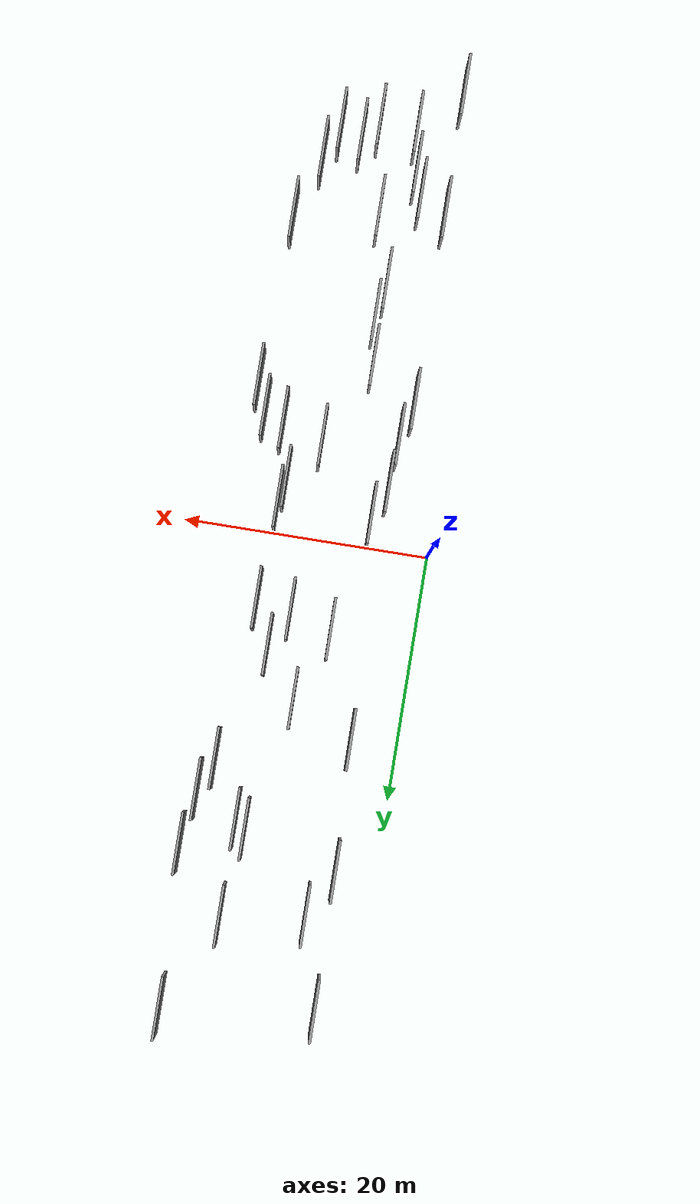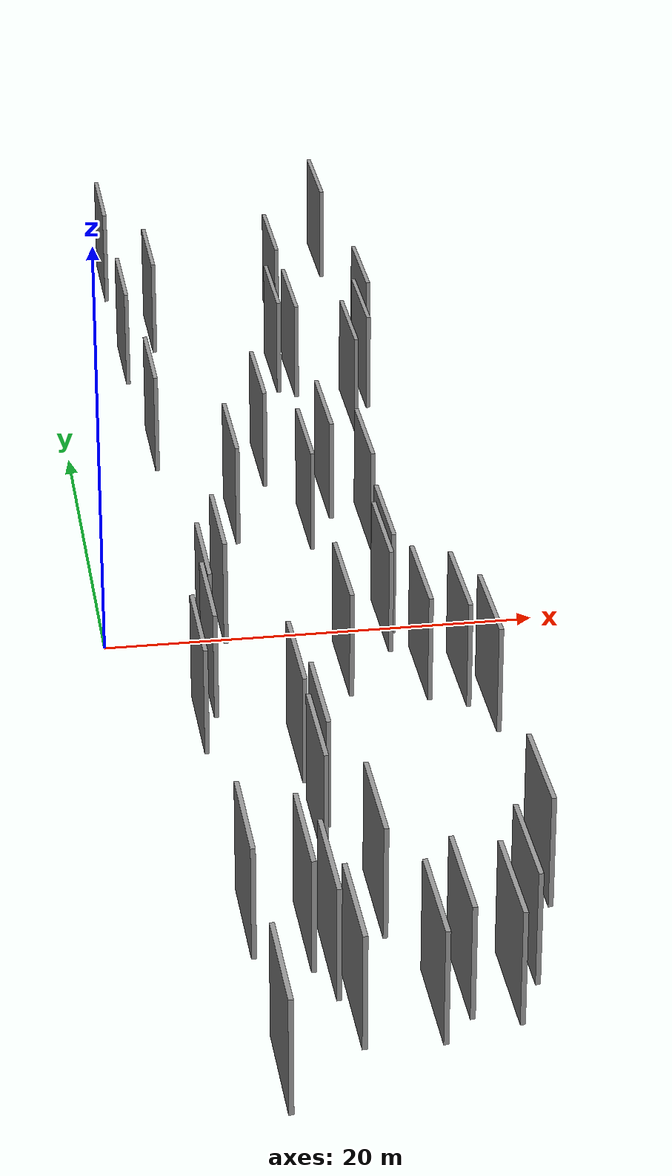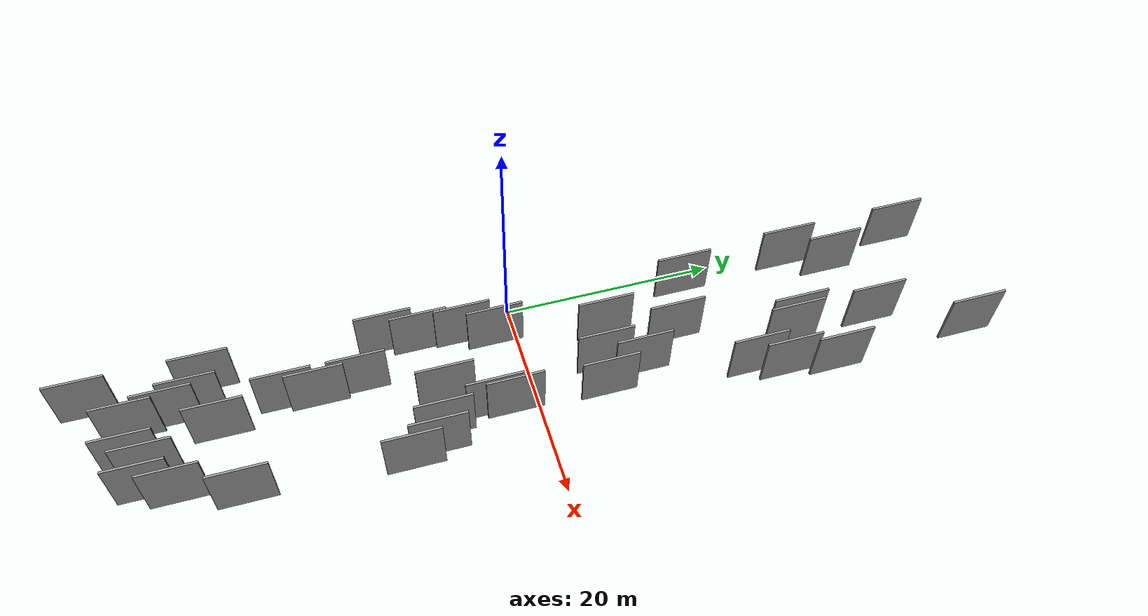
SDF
<sdf version="1.6">
 <world name="default">
  <scene>
   <sky><clouds><speed>12</speed></clouds></sky>
   <ambient>0.4 0.4 0.4 1</ambient>
   <background>0.7 0.7 0.7 1</background>
   <shadows>1</shadows>
  </scene>
  <gravity>0 0 -9.8066</gravity>
  <magnetic_field>6e-06 2.3e-05 -4.2e-05</magnetic_field>
  <physics default="0" name="default_physics" type="ode">
   <ode>
    <solver>
     <type>quick</type>
     <iters>10</iters>
     <sor>1.0</sor>
     <use_dynamic_moi_rescaling>0</use_dynamic_moi_rescaling>
    </solver>
    <constraints>
     <cfm>0</cfm>
     <erp>0.2</erp>
     <contact_max_correcting_vel>100</contact_max_correcting_vel>
     <contact_surface_layer>0.001</contact_surface_layer>
    </constraints>
   </ode>
   <max_step_size>0.004</max_step_size>
   <real_time_factor>1</real_time_factor>
   <real_time_update_rate>250</real_time_update_rate>
  </physics>
  <light name="sun" type="directional">
   <pose>0 0 10 0 0 0</pose>
   <diffuse>0.8 0.8 0.8 1</diffuse>
   <specular>0.2 0.2 0.2 1</specular>
   <attenuation>
    <range>1000</range>
    <constant>0.9</constant>
    <linear>0.01</linear>
    <quadratic>0.001</quadratic>
   </attenuation>
   <direction>-0.5 0.1 -0.9</direction>
  </light>
  <model name="grey_wall_1">
   <static>1</static>
   <pose>4.0611 -5.0417 2.5 0.000000 0.000000 1.570796</pose>
   <link name="link">
    <pose>0 0 2.50 0 0 0</pose>
    <collision name="collision"><geometry><box><size>5.00 0.2 5.00</size></box></geometry></collision>
    <visual name="visual">
     <cast_shadows>0</cast_shadows>
     <geometry><box><size>5.00 0.2 5.00</size></box></geometry>
     <material>
      <script>
       <uri>model://grey_wall/materials/scripts</uri>
       <uri>model://grey_wall/materials/textures</uri>
       <name>vrc/grey_wall</name>
      </script>
     </material>
    </visual>
   </link>
  </model>
  <model name="grey_wall_2">
   <static>1</static>
   <pose>6.8027 -21.0316 2.5 0.000000 0.000000 1.570796</pose>
   <link name="link">
    <pose>0 0 2.50 0 0 0</pose>
    <collision name="collision"><geometry><box><size>5.00 0.2 5.00</size></box></geometry></collision>
    <visual name="visual">
     <cast_shadows>0</cast_shadows>
     <geometry><box><size>5.00 0.2 5.00</size></box></geometry>
     <material>
      <script>
       <uri>model://grey_wall/materials/scripts</uri>
       <uri>model://grey_wall/materials/textures</uri>
       <name>vrc/grey_wall</name>
      </script>
     </material>
    </visual>
   </link>
  </model>
  <model name="grey_wall_3">
   <static>1</static>
   <pose>5.0517 -2.3340 2.5 0.000000 0.000000 1.570796</pose>
   <link name="link">
    <pose>0 0 2.50 0 0 0</pose>
    <collision name="collision"><geometry><box><size>5.00 0.2 5.00</size></box></geometry></collision>
    <visual name="visual">
     <cast_shadows>0</cast_shadows>
     <geometry><box><size>5.00 0.2 5.00</size></box></geometry>
     <material>
      <script>
       <uri>model://grey_wall/materials/scripts</uri>
       <uri>model://grey_wall/materials/textures</uri>
       <name>vrc/grey_wall</name>
      </script>
     </material>
    </visual>
   </link>
  </model>
  <model name="grey_wall_4">
   <static>1</static>
   <pose>13.2002 -8.6880 2.5 0.000000 0.000000 1.570796</pose>
   <link name="link">
    <pose>0 0 2.50 0 0 0</pose>
    <collision name="collision"><geometry><box><size>5.00 0.2 5.00</size></box></geometry></collision>
    <visual name="visual">
     <cast_shadows>0</cast_shadows>
     <geometry><box><size>5.00 0.2 5.00</size></box></geometry>
     <material>
      <script>
       <uri>model://grey_wall/materials/scripts</uri>
       <uri>model://grey_wall/materials/textures</uri>
       <name>vrc/grey_wall</name>
      </script>
     </material>
    </visual>
   </link>
  </model>
  <model name="grey_wall_5">
   <static>1</static>
   <pose>5.1842 -28.6726 2.5 0.000000 0.000000 1.570796</pose>
   <link name="link">
    <pose>0 0 2.50 0 0 0</pose>
    <collision name="collision"><geometry><box><size>5.00 0.2 5.00</size></box></geometry></collision>
    <visual name="visual">
     <cast_shadows>0</cast_shadows>
     <geometry><box><size>5.00 0.2 5.00</size></box></geometry>
     <material>
      <script>
       <uri>model://grey_wall/materials/scripts</uri>
       <uri>model://grey_wall/materials/textures</uri>
       <name>vrc/grey_wall</name>
      </script>
     </material>
    </visual>
   </link>
  </model>
  <model name="grey_wall_6">
   <static>1</static>
   <pose>15.6632 -11.8066 2.5 0.000000 0.000000 1.570796</pose>
   <link name="link">
    <pose>0 0 2.50 0 0 0</pose>
    <collision name="collision"><geometry><box><size>5.00 0.2 5.00</size></box></geometry></collision>
    <visual name="visual">
     <cast_shadows>0</cast_shadows>
     <geometry><box><size>5.00 0.2 5.00</size></box></geometry>
     <material>
      <script>
       <uri>model://grey_wall/materials/scripts</uri>
       <uri>model://grey_wall/materials/textures</uri>
       <name>vrc/grey_wall</name>
      </script>
     </material>
    </visual>
   </link>
  </model>
  <model name="grey_wall_7">
   <static>1</static>
   <pose>5.2325 29.7502 2.5 0.000000 0.000000 1.570796</pose>
   <link name="link">
    <pose>0 0 2.50 0 0 0</pose>
    <collision name="collision"><geometry><box><size>5.00 0.2 5.00</size></box></geometry></collision>
    <visual name="visual">
     <cast_shadows>0</cast_shadows>
     <geometry><box><size>5.00 0.2 5.00</size></box></geometry>
     <material>
      <script>
       <uri>model://grey_wall/materials/scripts</uri>
       <uri>model://grey_wall/materials/textures</uri>
       <name>vrc/grey_wall</name>
      </script>
     </material>
    </visual>
   </link>
  </model>
  <model name="grey_wall_8">
   <static>1</static>
   <pose>14.2520 18.7324 2.5 0.000000 0.000000 1.570796</pose>
   <link name="link">
    <pose>0 0 2.50 0 0 0</pose>
    <collision name="collision"><geometry><box><size>5.00 0.2 5.00</size></box></geometry></collision>
    <visual name="visual">
     <cast_shadows>0</cast_shadows>
     <geometry><box><size>5.00 0.2 5.00</size></box></geometry>
     <material>
      <script>
       <uri>model://grey_wall/materials/scripts</uri>
       <uri>model://grey_wall/materials/textures</uri>
       <name>vrc/grey_wall</name>
      </script>
     </material>
    </visual>
   </link>
  </model>
  <model name="grey_wall_9">
   <static>1</static>
   <pose>9.8904 -7.8526 2.5 0.000000 0.000000 1.570796</pose>
   <link name="link">
    <pose>0 0 2.50 0 0 0</pose>
    <collision name="collision"><geometry><box><size>5.00 0.2 5.00</size></box></geometry></collision>
    <visual name="visual">
     <cast_shadows>0</cast_shadows>
     <geometry><box><size>5.00 0.2 5.00</size></box></geometry>
     <material>
      <script>
       <uri>model://grey_wall/materials/scripts</uri>
       <uri>model://grey_wall/materials/textures</uri>
       <name>vrc/grey_wall</name>
      </script>
     </material>
    </visual>
   </link>
  </model>
  <model name="grey_wall_10">
   <static>1</static>
   <pose>15.0764 -25.5331 2.5 0.000000 0.000000 1.570796</pose>
   <link name="link">
    <pose>0 0 2.50 0 0 0</pose>
    <collision name="collision"><geometry><box><size>5.00 0.2 5.00</size></box></geometry></collision>
    <visual name="visual">
     <cast_shadows>0</cast_shadows>
     <geometry><box><size>5.00 0.2 5.00</size></box></geometry>
     <material>
      <script>
       <uri>model://grey_wall/materials/scripts</uri>
       <uri>model://grey_wall/materials/textures</uri>
       <name>vrc/grey_wall</name>
      </script>
     </material>
    </visual>
   </link>
  </model>
  <model name="grey_wall_11">
   <static>1</static>
   <pose>15.9579 25.7629 2.5 0.000000 0.000000 1.570796</pose>
   <link name="link">
    <pose>0 0 2.50 0 0 0</pose>
    <collision name="collision"><geometry><box><size>5.00 0.2 5.00</size></box></geometry></collision>
    <visual name="visual">
     <cast_shadows>0</cast_shadows>
     <geometry><box><size>5.00 0.2 5.00</size></box></geometry>
     <material>
      <script>
       <uri>model://grey_wall/materials/scripts</uri>
       <uri>model://grey_wall/materials/textures</uri>
       <name>vrc/grey_wall</name>
      </script>
     </material>
    </visual>
   </link>
  </model>
  <model name="grey_wall_12">
   <static>1</static>
   <pose>12.6121 -2.4671 2.5 0.000000 0.000000 1.570796</pose>
   <link name="link">
    <pose>0 0 2.50 0 0 0</pose>
    <collision name="collision"><geometry><box><size>5.00 0.2 5.00</size></box></geometry></collision>
    <visual name="visual">
     <cast_shadows>0</cast_shadows>
     <geometry><box><size>5.00 0.2 5.00</size></box></geometry>
     <material>
      <script>
       <uri>model://grey_wall/materials/scripts</uri>
       <uri>model://grey_wall/materials/textures</uri>
       <name>vrc/grey_wall</name>
      </script>
     </material>
    </visual>
   </link>
  </model>
  <model name="grey_wall_13">
   <static>1</static>
   <pose>15.4311 38.5887 2.5 0.000000 0.000000 1.570796</pose>
   <link name="link">
    <pose>0 0 2.50 0 0 0</pose>
    <collision name="collision"><geometry><box><size>5.00 0.2 5.00</size></box></geometry></collision>
    <visual name="visual">
     <cast_shadows>0</cast_shadows>
     <geometry><box><size>5.00 0.2 5.00</size></box></geometry>
     <material>
      <script>
       <uri>model://grey_wall/materials/scripts</uri>
       <uri>model://grey_wall/materials/textures</uri>
       <name>vrc/grey_wall</name>
      </script>
     </material>
    </visual>
   </link>
  </model>
  <model name="grey_wall_14">
   <static>1</static>
   <pose>3.4527 25.9818 2.5 0.000000 0.000000 1.570796</pose>
   <link name="link">
    <pose>0 0 2.50 0 0 0</pose>
    <collision name="collision"><geometry><box><size>5.00 0.2 5.00</size></box></geometry></collision>
    <visual name="visual">
     <cast_shadows>0</cast_shadows>
     <geometry><box><size>5.00 0.2 5.00</size></box></geometry>
     <material>
      <script>
       <uri>model://grey_wall/materials/scripts</uri>
       <uri>model://grey_wall/materials/textures</uri>
       <name>vrc/grey_wall</name>
      </script>
     </material>
    </visual>
   </link>
  </model>
  <model name="grey_wall_15">
   <static>1</static>
   <pose>12.2305 -4.1377 2.5 0.000000 0.000000 1.570796</pose>
   <link name="link">
    <pose>0 0 2.50 0 0 0</pose>
    <collision name="collision"><geometry><box><size>5.00 0.2 5.00</size></box></geometry></collision>
    <visual name="visual">
     <cast_shadows>0</cast_shadows>
     <geometry><box><size>5.00 0.2 5.00</size></box></geometry>
     <material>
      <script>
       <uri>model://grey_wall/materials/scripts</uri>
       <uri>model://grey_wall/materials/textures</uri>
       <name>vrc/grey_wall</name>
      </script>
     </material>
    </visual>
   </link>
  </model>
  <model name="grey_wall_16">
   <static>1</static>
   <pose>11.0321 23.8333 2.5 0.000000 0.000000 1.570796</pose>
   <link name="link">
    <pose>0 0 2.50 0 0 0</pose>
    <collision name="collision"><geometry><box><size>5.00 0.2 5.00</size></box></geometry></collision>
    <visual name="visual">
     <cast_shadows>0</cast_shadows>
     <geometry><box><size>5.00 0.2 5.00</size></box></geometry>
     <material>
      <script>
       <uri>model://grey_wall/materials/scripts</uri>
       <uri>model://grey_wall/materials/textures</uri>
       <name>vrc/grey_wall</name>
      </script>
     </material>
    </visual>
   </link>
  </model>
  <model name="grey_wall_17">
   <static>1</static>
   <pose>11.8586 23.1763 2.5 0.000000 0.000000 1.570796</pose>
   <link name="link">
    <pose>0 0 2.50 0 0 0</pose>
    <collision name="collision"><geometry><box><size>5.00 0.2 5.00</size></box></geometry></collision>
    <visual name="visual">
     <cast_shadows>0</cast_shadows>
     <geometry><box><size>5.00 0.2 5.00</size></box></geometry>
     <material>
      <script>
       <uri>model://grey_wall/materials/scripts</uri>
       <uri>model://grey_wall/materials/textures</uri>
       <name>vrc/grey_wall</name>
      </script>
     </material>
    </visual>
   </link>
  </model>
  <model name="grey_wall_18">
   <static>1</static>
   <pose>3.8338 -8.8476 2.5 0.000000 0.000000 1.570796</pose>
   <link name="link">
    <pose>0 0 2.50 0 0 0</pose>
    <collision name="collision"><geometry><box><size>5.00 0.2 5.00</size></box></geometry></collision>
    <visual name="visual">
     <cast_shadows>0</cast_shadows>
     <geometry><box><size>5.00 0.2 5.00</size></box></geometry>
     <material>
      <script>
       <uri>model://grey_wall/materials/scripts</uri>
       <uri>model://grey_wall/materials/textures</uri>
       <name>vrc/grey_wall</name>
      </script>
     </material>
    </visual>
   </link>
  </model>
  <model name="grey_wall_19">
   <static>1</static>
   <pose>8.8833 13.1258 2.5 0.000000 0.000000 1.570796</pose>
   <link name="link">
    <pose>0 0 2.50 0 0 0</pose>
    <collision name="collision"><geometry><box><size>5.00 0.2 5.00</size></box></geometry></collision>
    <visual name="visual">
     <cast_shadows>0</cast_shadows>
     <geometry><box><size>5.00 0.2 5.00</size></box></geometry>
     <material>
      <script>
       <uri>model://grey_wall/materials/scripts</uri>
       <uri>model://grey_wall/materials/textures</uri>
       <name>vrc/grey_wall</name>
      </script>
     </material>
    </visual>
   </link>
  </model>
  <model name="grey_wall_20">
   <static>1</static>
   <pose>11.8826 30.8243 2.5 0.000000 0.000000 1.570796</pose>
   <link name="link">
    <pose>0 0 2.50 0 0 0</pose>
    <collision name="collision"><geometry><box><size>5.00 0.2 5.00</size></box></geometry></collision>
    <visual name="visual">
     <cast_shadows>0</cast_shadows>
     <geometry><box><size>5.00 0.2 5.00</size></box></geometry>
     <material>
      <script>
       <uri>model://grey_wall/materials/scripts</uri>
       <uri>model://grey_wall/materials/textures</uri>
       <name>vrc/grey_wall</name>
      </script>
     </material>
    </visual>
   </link>
  </model>
  <model name="grey_wall_21">
   <static>1</static>
   <pose>11.5611 9.2279 2.5 0.000000 0.000000 1.570796</pose>
   <link name="link">
    <pose>0 0 2.50 0 0 0</pose>
    <collision name="collision"><geometry><box><size>5.00 0.2 5.00</size></box></geometry></collision>
    <visual name="visual">
     <cast_shadows>0</cast_shadows>
     <geometry><box><size>5.00 0.2 5.00</size></box></geometry>
     <material>
      <script>
       <uri>model://grey_wall/materials/scripts</uri>
       <uri>model://grey_wall/materials/textures</uri>
       <name>vrc/grey_wall</name>
      </script>
     </material>
    </visual>
   </link>
  </model>
  <model name="grey_wall_22">
   <static>1</static>
   <pose>15.2803 21.3491 2.5 0.000000 0.000000 1.570796</pose>
   <link name="link">
    <pose>0 0 2.50 0 0 0</pose>
    <collision name="collision"><geometry><box><size>5.00 0.2 5.00</size></box></geometry></collision>
    <visual name="visual">
     <cast_shadows>0</cast_shadows>
     <geometry><box><size>5.00 0.2 5.00</size></box></geometry>
     <material>
      <script>
       <uri>model://grey_wall/materials/scripts</uri>
       <uri>model://grey_wall/materials/textures</uri>
       <name>vrc/grey_wall</name>
      </script>
     </material>
    </visual>
   </link>
  </model>
  <model name="grey_wall_23">
   <static>1</static>
   <pose>13.5013 -30.7502 2.5 0.000000 0.000000 1.570796</pose>
   <link name="link">
    <pose>0 0 2.50 0 0 0</pose>
    <collision name="collision"><geometry><box><size>5.00 0.2 5.00</size></box></geometry></collision>
    <visual name="visual">
     <cast_shadows>0</cast_shadows>
     <geometry><box><size>5.00 0.2 5.00</size></box></geometry>
     <material>
      <script>
       <uri>model://grey_wall/materials/scripts</uri>
       <uri>model://grey_wall/materials/textures</uri>
       <name>vrc/grey_wall</name>
      </script>
     </material>
    </visual>
   </link>
  </model>
  <model name="grey_wall_24">
   <static>1</static>
   <pose>5.8573 -30.6992 2.5 0.000000 0.000000 1.570796</pose>
   <link name="link">
    <pose>0 0 2.50 0 0 0</pose>
    <collision name="collision"><geometry><box><size>5.00 0.2 5.00</size></box></geometry></collision>
    <visual name="visual">
     <cast_shadows>0</cast_shadows>
     <geometry><box><size>5.00 0.2 5.00</size></box></geometry>
     <material>
      <script>
       <uri>model://grey_wall/materials/scripts</uri>
       <uri>model://grey_wall/materials/textures</uri>
       <name>vrc/grey_wall</name>
      </script>
     </material>
    </visual>
   </link>
  </model>
  <model name="grey_wall_25">
   <static>1</static>
   <pose>14.7804 -9.4741 2.5 0.000000 0.000000 1.570796</pose>
   <link name="link">
    <pose>0 0 2.50 0 0 0</pose>
    <collision name="collision"><geometry><box><size>5.00 0.2 5.00</size></box></geometry></collision>
    <visual name="visual">
     <cast_shadows>0</cast_shadows>
     <geometry><box><size>5.00 0.2 5.00</size></box></geometry>
     <material>
      <script>
       <uri>model://grey_wall/materials/scripts</uri>
       <uri>model://grey_wall/materials/textures</uri>
       <name>vrc/grey_wall</name>
      </script>
     </material>
    </visual>
   </link>
  </model>
  <model name="grey_wall_26">
   <static>1</static>
   <pose>9.3566 -34.0890 2.5 0.000000 0.000000 1.570796</pose>
   <link name="link">
    <pose>0 0 2.50 0 0 0</pose>
    <collision name="collision"><geometry><box><size>5.00 0.2 5.00</size></box></geometry></collision>
    <visual name="visual">
     <cast_shadows>0</cast_shadows>
     <geometry><box><size>5.00 0.2 5.00</size></box></geometry>
     <material>
      <script>
       <uri>model://grey_wall/materials/scripts</uri>
       <uri>model://grey_wall/materials/textures</uri>
       <name>vrc/grey_wall</name>
      </script>
     </material>
    </visual>
   </link>
  </model>
  <model name="grey_wall_27">
   <static>1</static>
   <pose>3.3523 36.8892 2.5 0.000000 0.000000 1.570796</pose>
   <link name="link">
    <pose>0 0 2.50 0 0 0</pose>
    <collision name="collision"><geometry><box><size>5.00 0.2 5.00</size></box></geometry></collision>
    <visual name="visual">
     <cast_shadows>0</cast_shadows>
     <geometry><box><size>5.00 0.2 5.00</size></box></geometry>
     <material>
      <script>
       <uri>model://grey_wall/materials/scripts</uri>
       <uri>model://grey_wall/materials/textures</uri>
       <name>vrc/grey_wall</name>
      </script>
     </material>
    </visual>
   </link>
  </model>
  <model name="grey_wall_28">
   <static>1</static>
   <pose>6.3147 -33.9557 2.5 0.000000 0.000000 1.570796</pose>
   <link name="link">
    <pose>0 0 2.50 0 0 0</pose>
    <collision name="collision"><geometry><box><size>5.00 0.2 5.00</size></box></geometry></collision>
    <visual name="visual">
     <cast_shadows>0</cast_shadows>
     <geometry><box><size>5.00 0.2 5.00</size></box></geometry>
     <material>
      <script>
       <uri>model://grey_wall/materials/scripts</uri>
       <uri>model://grey_wall/materials/textures</uri>
       <name>vrc/grey_wall</name>
      </script>
     </material>
    </visual>
   </link>
  </model>
  <model name="grey_wall_29">
   <static>1</static>
   <pose>12.4158 -33.2538 2.5 0.000000 0.000000 1.570796</pose>
   <link name="link">
    <pose>0 0 2.50 0 0 0</pose>
    <collision name="collision"><geometry><box><size>5.00 0.2 5.00</size></box></geometry></collision>
    <visual name="visual">
     <cast_shadows>0</cast_shadows>
     <geometry><box><size>5.00 0.2 5.00</size></box></geometry>
     <material>
      <script>
       <uri>model://grey_wall/materials/scripts</uri>
       <uri>model://grey_wall/materials/textures</uri>
       <name>vrc/grey_wall</name>
      </script>
     </material>
    </visual>
   </link>
  </model>
  <model name="grey_wall_30">
   <static>1</static>
   <pose>3.8703 15.6135 2.5 0.000000 0.000000 1.570796</pose>
   <link name="link">
    <pose>0 0 2.50 0 0 0</pose>
    <collision name="collision"><geometry><box><size>5.00 0.2 5.00</size></box></geometry></collision>
    <visual name="visual">
     <cast_shadows>0</cast_shadows>
     <geometry><box><size>5.00 0.2 5.00</size></box></geometry>
     <material>
      <script>
       <uri>model://grey_wall/materials/scripts</uri>
       <uri>model://grey_wall/materials/textures</uri>
       <name>vrc/grey_wall</name>
      </script>
     </material>
    </visual>
   </link>
  </model>
  <model name="grey_wall_31">
   <static>1</static>
   <pose>3.0288 -27.4514 2.5 0.000000 0.000000 1.570796</pose>
   <link name="link">
    <pose>0 0 2.50 0 0 0</pose>
    <collision name="collision"><geometry><box><size>5.00 0.2 5.00</size></box></geometry></collision>
    <visual name="visual">
     <cast_shadows>0</cast_shadows>
     <geometry><box><size>5.00 0.2 5.00</size></box></geometry>
     <material>
      <script>
       <uri>model://grey_wall/materials/scripts</uri>
       <uri>model://grey_wall/materials/textures</uri>
       <name>vrc/grey_wall</name>
      </script>
     </material>
    </visual>
   </link>
  </model>
  <model name="grey_wall_32">
   <static>1</static>
   <pose>6.8437 -14.7817 2.5 0.000000 0.000000 1.570796</pose>
   <link name="link">
    <pose>0 0 2.50 0 0 0</pose>
    <collision name="collision"><geometry><box><size>5.00 0.2 5.00</size></box></geometry></collision>
    <visual name="visual">
     <cast_shadows>0</cast_shadows>
     <geometry><box><size>5.00 0.2 5.00</size></box></geometry>
     <material>
      <script>
       <uri>model://grey_wall/materials/scripts</uri>
       <uri>model://grey_wall/materials/textures</uri>
       <name>vrc/grey_wall</name>
      </script>
     </material>
    </visual>
   </link>
  </model>
  <model name="grey_wall_33">
   <static>1</static>
   <pose>12.9965 5.7429 2.5 0.000000 0.000000 1.570796</pose>
   <link name="link">
    <pose>0 0 2.50 0 0 0</pose>
    <collision name="collision"><geometry><box><size>5.00 0.2 5.00</size></box></geometry></collision>
    <visual name="visual">
     <cast_shadows>0</cast_shadows>
     <geometry><box><size>5.00 0.2 5.00</size></box></geometry>
     <material>
      <script>
       <uri>model://grey_wall/materials/scripts</uri>
       <uri>model://grey_wall/materials/textures</uri>
       <name>vrc/grey_wall</name>
      </script>
     </material>
    </visual>
   </link>
  </model>
  <model name="grey_wall_34">
   <static>1</static>
   <pose>10.2127 6.1864 2.5 0.000000 0.000000 1.570796</pose>
   <link name="link">
    <pose>0 0 2.50 0 0 0</pose>
    <collision name="collision"><geometry><box><size>5.00 0.2 5.00</size></box></geometry></collision>
    <visual name="visual">
     <cast_shadows>0</cast_shadows>
     <geometry><box><size>5.00 0.2 5.00</size></box></geometry>
     <material>
      <script>
       <uri>model://grey_wall/materials/scripts</uri>
       <uri>model://grey_wall/materials/textures</uri>
       <name>vrc/grey_wall</name>
      </script>
     </material>
    </visual>
   </link>
  </model>
  <model name="grey_wall_35">
   <static>1</static>
   <pose>3.0692 -11.8212 2.5 0.000000 0.000000 1.570796</pose>
   <link name="link">
    <pose>0 0 2.50 0 0 0</pose>
    <collision name="collision"><geometry><box><size>5.00 0.2 5.00</size></box></geometry></collision>
    <visual name="visual">
     <cast_shadows>0</cast_shadows>
     <geometry><box><size>5.00 0.2 5.00</size></box></geometry>
     <material>
      <script>
       <uri>model://grey_wall/materials/scripts</uri>
       <uri>model://grey_wall/materials/textures</uri>
       <name>vrc/grey_wall</name>
      </script>
     </material>
    </visual>
   </link>
  </model>
  <model name="grey_wall_36">
   <static>1</static>
   <pose>10.6263 -32.6349 2.5 0.000000 0.000000 1.570796</pose>
   <link name="link">
    <pose>0 0 2.50 0 0 0</pose>
    <collision name="collision"><geometry><box><size>5.00 0.2 5.00</size></box></geometry></collision>
    <visual name="visual">
     <cast_shadows>0</cast_shadows>
     <geometry><box><size>5.00 0.2 5.00</size></box></geometry>
     <material>
      <script>
       <uri>model://grey_wall/materials/scripts</uri>
       <uri>model://grey_wall/materials/textures</uri>
       <name>vrc/grey_wall</name>
      </script>
     </material>
    </visual>
   </link>
  </model>
  <model name="grey_wall_37">
   <static>1</static>
   <pose>6.8125 7.2582 2.5 0.000000 0.000000 1.570796</pose>
   <link name="link">
    <pose>0 0 2.50 0 0 0</pose>
    <collision name="collision"><geometry><box><size>5.00 0.2 5.00</size></box></geometry></collision>
    <visual name="visual">
     <cast_shadows>0</cast_shadows>
     <geometry><box><size>5.00 0.2 5.00</size></box></geometry>
     <material>
      <script>
       <uri>model://grey_wall/materials/scripts</uri>
       <uri>model://grey_wall/materials/textures</uri>
       <name>vrc/grey_wall</name>
      </script>
     </material>
    </visual>
   </link>
  </model>
  <model name="grey_wall_38">
   <static>1</static>
   <pose>3.0648 -37.5399 2.5 0.000000 0.000000 1.570796</pose>
   <link name="link">
    <pose>0 0 2.50 0 0 0</pose>
    <collision name="collision"><geometry><box><size>5.00 0.2 5.00</size></box></geometry></collision>
    <visual name="visual">
     <cast_shadows>0</cast_shadows>
     <geometry><box><size>5.00 0.2 5.00</size></box></geometry>
     <material>
      <script>
       <uri>model://grey_wall/materials/scripts</uri>
       <uri>model://grey_wall/materials/textures</uri>
       <name>vrc/grey_wall</name>
      </script>
     </material>
    </visual>
   </link>
  </model>
  <model name="grey_wall_39">
   <static>1</static>
   <pose>8.2739 -26.7588 2.5 0.000000 0.000000 1.570796</pose>
   <link name="link">
    <pose>0 0 2.50 0 0 0</pose>
    <collision name="collision"><geometry><box><size>5.00 0.2 5.00</size></box></geometry></collision>
    <visual name="visual">
     <cast_shadows>0</cast_shadows>
     <geometry><box><size>5.00 0.2 5.00</size></box></geometry>
     <material>
      <script>
       <uri>model://grey_wall/materials/scripts</uri>
       <uri>model://grey_wall/materials/textures</uri>
       <name>vrc/grey_wall</name>
      </script>
     </material>
    </visual>
   </link>
  </model>
  <model name="grey_wall_40">
   <static>1</static>
   <pose>7.2871 -18.4020 2.5 0.000000 0.000000 1.570796</pose>
   <link name="link">
    <pose>0 0 2.50 0 0 0</pose>
    <collision name="collision"><geometry><box><size>5.00 0.2 5.00</size></box></geometry></collision>
    <visual name="visual">
     <cast_shadows>0</cast_shadows>
     <geometry><box><size>5.00 0.2 5.00</size></box></geometry>
     <material>
      <script>
       <uri>model://grey_wall/materials/scripts</uri>
       <uri>model://grey_wall/materials/textures</uri>
       <name>vrc/grey_wall</name>
      </script>
     </material>
    </visual>
   </link>
  </model>
 </world>
</sdf>
